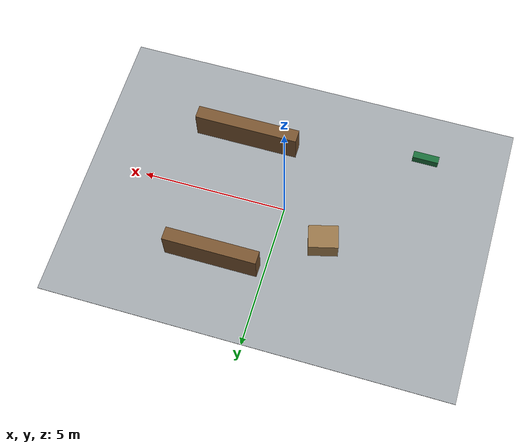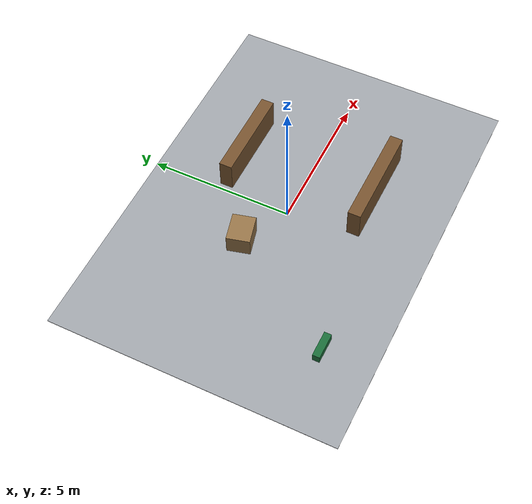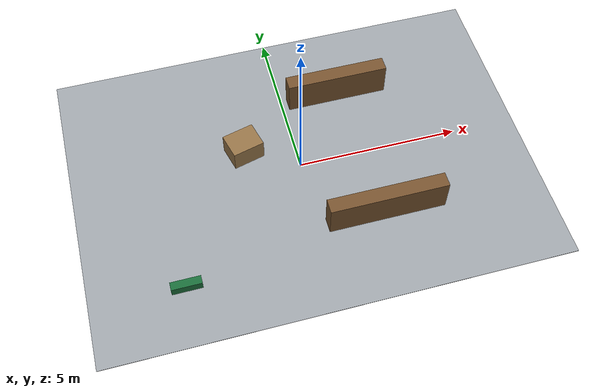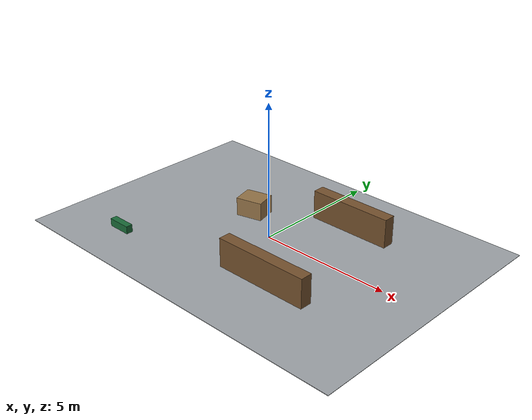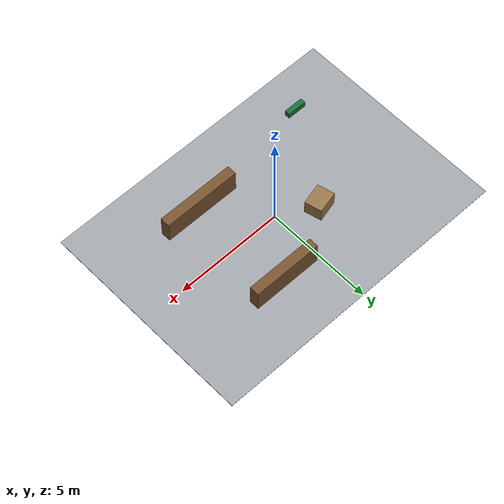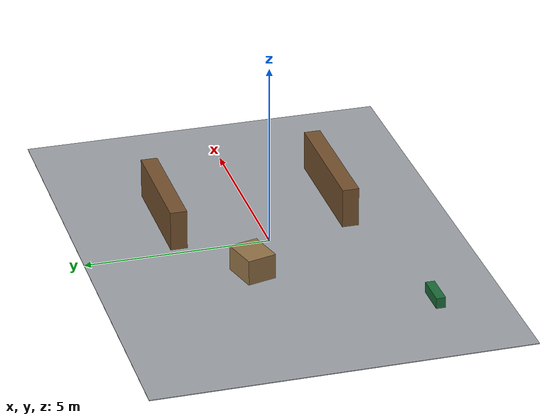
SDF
<?xml version="1.0"?>
<sdf version="1.9">
  <world name="amr_warehouse">
    <plugin filename="gz-sim-physics-system" name="gz::sim::systems::Physics"/>
    <plugin filename="gz-sim-user-commands-system" name="gz::sim::systems::UserCommands"/>
    <plugin filename="gz-sim-scene-broadcaster-system" name="gz::sim::systems::SceneBroadcaster"/>
    <plugin filename="gz-sim-sensors-system" name="gz::sim::systems::Sensors">
      <render_engine>ogre2</render_engine>
    </plugin>

    <gravity>0 0 -9.80665</gravity>
    <magnetic_field>6e-06 2.3e-05 -4.2e-05</magnetic_field>
    <atmosphere type="adiabatic"/>

    <scene>
      <ambient>0.45 0.45 0.45 1</ambient>
      <background>0.78 0.82 0.88 1</background>
      <shadows>true</shadows>
    </scene>

    <light name="warehouse_sun" type="directional">
      <pose>0 0 6 0 0 0</pose>
      <diffuse>0.9 0.9 0.85 1</diffuse>
      <specular>0.2 0.2 0.2 1</specular>
      <direction>-0.35 0.25 -0.9</direction>
      <cast_shadows>true</cast_shadows>
    </light>

    <model name="floor">
      <static>true</static>
      <link name="floor_link">
        <collision name="floor_collision">
          <geometry>
            <box>
              <size>14 10 0.02</size>
            </box>
          </geometry>
        </collision>
        <visual name="floor_visual">
          <geometry>
            <box>
              <size>14 10 0.02</size>
            </box>
          </geometry>
          <material>
            <ambient>0.62 0.64 0.66 1</ambient>
            <diffuse>0.62 0.64 0.66 1</diffuse>
          </material>
        </visual>
      </link>
    </model>

    <model name="charging_station">
      <pose>-4.2 -3.2 0.15 0 0 0</pose>
      <static>true</static>
      <link name="body">
        <collision name="collision">
          <geometry>
            <box>
              <size>0.9 0.25 0.3</size>
            </box>
          </geometry>
        </collision>
        <visual name="visual">
          <geometry>
            <box>
              <size>0.9 0.25 0.3</size>
            </box>
          </geometry>
          <material>
            <ambient>0.1 0.42 0.22 1</ambient>
            <diffuse>0.1 0.42 0.22 1</diffuse>
          </material>
        </visual>
      </link>
    </model>

    <model name="rack_left">
      <pose>1.8 2.4 0.55 0 0 0</pose>
      <static>true</static>
      <link name="rack">
        <collision name="collision">
          <geometry>
            <box>
              <size>3.2 0.45 1.1</size>
            </box>
          </geometry>
        </collision>
        <visual name="visual">
          <geometry>
            <box>
              <size>3.2 0.45 1.1</size>
            </box>
          </geometry>
          <material>
            <ambient>0.46 0.32 0.18 1</ambient>
            <diffuse>0.46 0.32 0.18 1</diffuse>
          </material>
        </visual>
      </link>
    </model>

    <model name="rack_right">
      <pose>2.0 -2.3 0.55 0 0 0</pose>
      <static>true</static>
      <link name="rack">
        <collision name="collision">
          <geometry>
            <box>
              <size>3.6 0.45 1.1</size>
            </box>
          </geometry>
        </collision>
        <visual name="visual">
          <geometry>
            <box>
              <size>3.6 0.45 1.1</size>
            </box>
          </geometry>
          <material>
            <ambient>0.46 0.32 0.18 1</ambient>
            <diffuse>0.46 0.32 0.18 1</diffuse>
          </material>
        </visual>
      </link>
    </model>

    <model name="pallet_stack">
      <pose>-1.6 0.9 0.35 0 0 0.25</pose>
      <static>true</static>
      <link name="pallet">
        <collision name="collision">
          <geometry>
            <box>
              <size>1.0 0.8 0.7</size>
            </box>
          </geometry>
        </collision>
        <visual name="visual">
          <geometry>
            <box>
              <size>1.0 0.8 0.7</size>
            </box>
          </geometry>
          <material>
            <ambient>0.58 0.45 0.28 1</ambient>
            <diffuse>0.58 0.45 0.28 1</diffuse>
          </material>
        </visual>
      </link>
    </model>
  </world>
</sdf>
